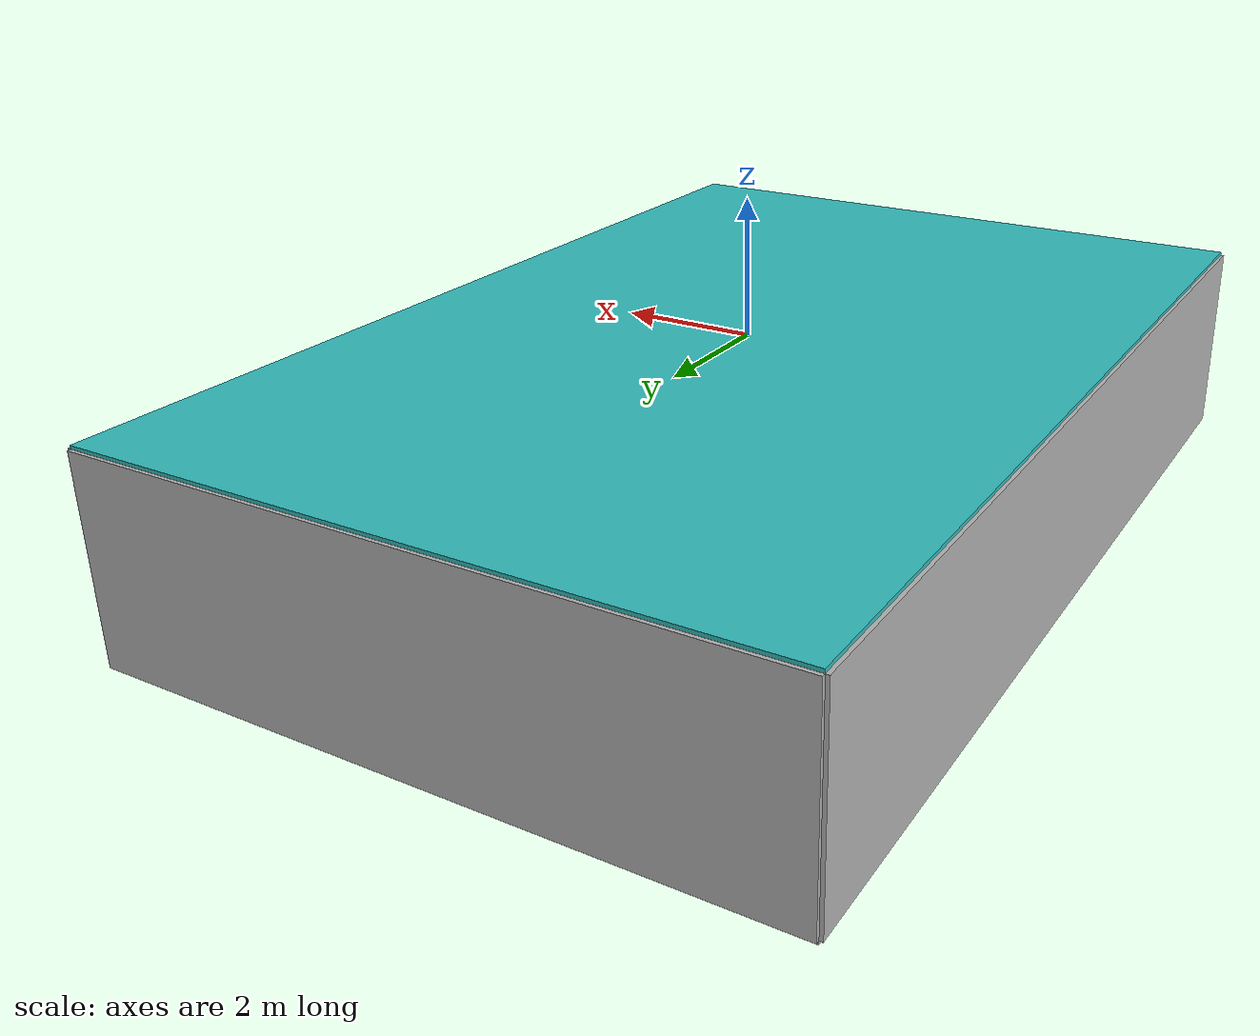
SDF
<?xml version='1.0'?>
<sdf version="1.5">
    <model name="pool_1">
        <static>true</static>
        <link name="pool_link">

            <visual name="floor">
                <cast_shadows>false</cast_shadows>
                <pose>0 0 -3.0 0 0 0</pose>
                <geometry>
                    <box>
                        <size>10 15 0.1</size>
                    </box>
                </geometry>
                <material>
                    <script>
                        <uri>file://media/materials/scripts/pool.material</uri>
                        <name>PoolWall</name>
                    </script>
                </material>
            </visual>
            <collision name="floor">
                <pose>0 0 -3.0 0 0 0</pose>
                <geometry>
                    <box>
                        <size>10 15 0.1</size>
                    </box>
                </geometry>
            </collision>
            <visual name="surface">
                <cast_shadows>false</cast_shadows>
                <pose>0 0 0 0 0 0</pose>
                <geometry>
                    <box>
                        <size>10 15 0.1</size>
                    </box>
                </geometry>

                <material>
                    <script>
                        <uri>file://media/materials/scripts/water.material</uri>
                        <name>UUVSimulator/StaticTurquoiseWater</name>
                    </script>
                </material>
            </visual>
            <collision name="surface">
                <pose>0 0 0 0 0 0</pose>
                <geometry>
                    <box>
                        <size>10 15 0.1</size>
                    </box>
                </geometry>
            </collision>

            <visual name="north">
                <cast_shadows>false</cast_shadows>
                <pose>5 0 -1.50 0 0 0</pose>
                <geometry>
                    <box>
                        <size>0.1 15 3.0</size>
                    </box>
                </geometry>
                <material>
                    <script>
                        <uri>file://media/materials/scripts/pool.material</uri>
                        <name>PoolWall</name>
                    </script>
                </material>
            </visual>

            <collision name="north">
                <pose>5 0 -1.50 0 0 0</pose>
                <geometry>
                    <box>
                        <size>0.1 15 3.0</size>
                    </box>
                </geometry>
            </collision>

            <visual name="south">
                <cast_shadows>false</cast_shadows>
                <pose>-5.0 0 -1.50 0 0 0</pose>
                <geometry>
                    <box>
                        <size>0.1 15 3.0</size>
                    </box>
                </geometry>
                <material>
                    <script>
                        <uri>file://media/materials/scripts/pool.material</uri>
                        <name>PoolWall</name>
                    </script>
                </material>
            </visual>

            <collision name="south">
                <pose>-5.0 0 -1.50 0 0 0</pose>
                <geometry>
                    <box>
                        <size>0.1 15 3.0</size>
                    </box>
                </geometry>
            </collision>

            <visual name="east">
                <cast_shadows>false</cast_shadows>
                <pose>0 7.5 -1.50 0 0 0</pose>
                <geometry>
                    <box>
                        <size>10 0.1 3.0</size>
                    </box>
                </geometry>
                <material>
                    <script>
                        <uri>file://media/materials/scripts/pool.material</uri>
                        <name>PoolWall</name>
                    </script>
                </material>
            </visual>

            <collision name="east">
                <pose>0 7.5 -1.50 0 0 0</pose>
                <geometry>
                    <box>
                        <size>10 0.1 3.0</size>
                    </box>
                </geometry>
            </collision>

            <visual name="west">
                <cast_shadows>false</cast_shadows>
                <pose>0 -7.5 -1.50 0 0 0</pose>
                <geometry>
                    <box>
                        <size>10 0.1 3.0</size>
                    </box>
                </geometry>
                <material>
                    <script>
                        <uri>file://media/materials/scripts/pool.material</uri>
                        <name>PoolWall</name>
                    </script>
                </material>
            </visual>

            <collision name="west">
                <pose>0 -7.5 -1.50 0 0 0</pose>
                <geometry>
                    <box>
                        <size>10 0.1 3.0</size>
                    </box>
                </geometry>
            </collision>

        </link>
    </model>

</sdf>
